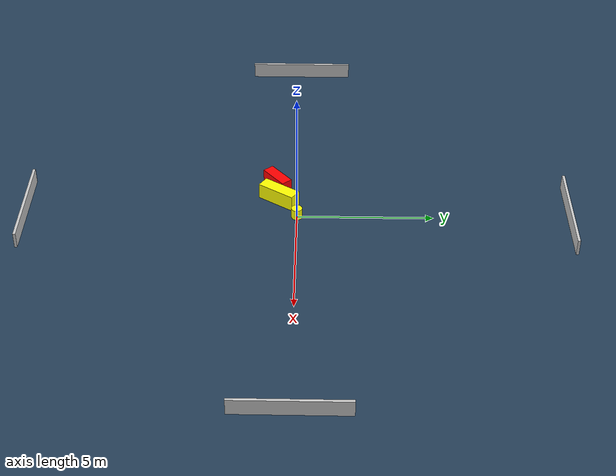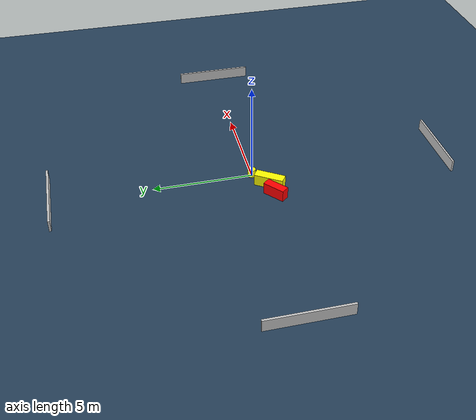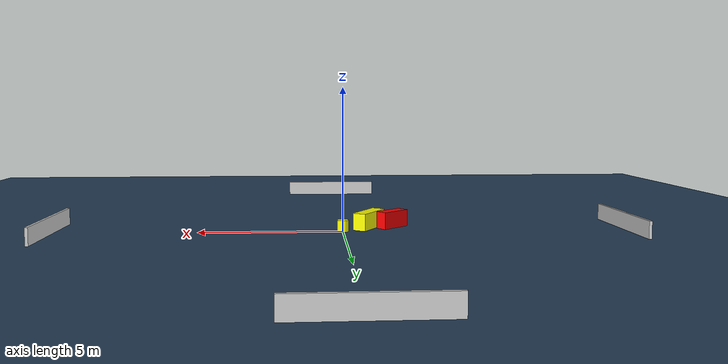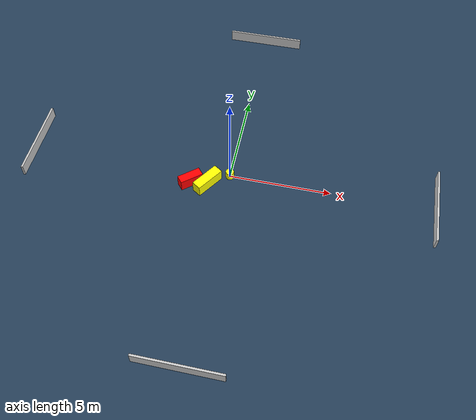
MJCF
<?xml version="1.0" ?>
<mujoco model="generated_environment">
  <option timestep="0.01" integrator="RK4" cone="elliptic"/>
  <default>
    <geom density="1"/>
  </default>
  <asset>
    <texture builtin="gradient" height="3072" name="skybox" rgb1="0.3 0.5 0.7" rgb2="0 0 0" type="skybox" width="512"/>
    <texture builtin="checker" height="300" name="groundplane" rgb1="0.2 0.3 0.4" rgb2="0.1 0.2 0.3" type="2d" width="300"/>
    <material name="groundplane" reflectance="0.2" texrepeat="5 5" texture="groundplane"/>
  </asset>
  <worldbody>
    <light dir="0 0 -1" directional="true" pos="0 0 1.5"/>
    <geom condim="3" friction="0.5 0.005 0.001" material="groundplane" name="floor" pos="0 0 0" size="0 0 0.05" type="plane"/>
    <body name="walls">
      <geom name="wall_1" condim="4" pos="-10.0 0.0 0.3" rgba="0.800000011920929 0.800000011920929 0.800000011920929 1.0" size="0.05 2.0 0.3" type="box"/>
      <geom name="wall_2" condim="4" pos="10.0 0.0 0.3" rgba="0.800000011920929 0.800000011920929 0.800000011920929 1.0" size="0.05 2.0 0.3" type="box"/>
      <geom name="wall_3" condim="4" pos="0.0 -10.0 0.3" rgba="0.800000011920929 0.800000011920929 0.800000011920929 1.0" size="2.0 0.05 0.3" type="box"/>
      <geom name="wall_4" condim="4" pos="0.0 10.0 0.3" rgba="0.800000011920929 0.800000011920929 0.800000011920929 1.0" size="2.0 0.05 0.3" type="box"/>
    </body>
    <body name="robot">
      <joint name="joint_x" type="slide" pos="0 0 0" axis="1 0 0"/>
      <joint name="joint_y" type="slide" pos="0 0 0" axis="0 1 0"/>
      <geom name="robot" type="cylinder" pos="0.0 0.0 0.2" size="0.2 0.2 0.0" mass="5.0" friction="1.0 0.005 0.0001" condim="4" rgba="1.0 1.0 0.0 1.0"/>
    </body>
    <body name="obstacle_1_movable">
      <geom name="obstacle_1_movable" condim="4" pos="-0.976806065813686 -0.6812907967273064 0.3" euler="0 0 146.47601810630061" friction="0.0 0.005 0.001" rgba="1.0 1.0 0.0 1.0" size="0.24004467723342365 0.7422517315812929 0.3" type="box" mass="0.1"/>
      <joint type="free"/>
    </body>
    <body name="obstacle_2_static">
      <geom name="obstacle_2_static" condim="4" pos="-1.8146006660417733 -0.763696901241139 0.3" euler="0 0 129.83034231143762" friction="0.0 0.005 0.001" rgba="1.0 0.0 0.0 1.0" size="0.21496405296769322 0.5737501774163516 0.3" type="box"/>
    </body>
  </worldbody>
  <actuator>
    <motor name="actuator_x" joint="joint_x" gear="1" ctrlrange="-1 1"/>
    <motor name="actuator_y" joint="joint_y" gear="1" ctrlrange="-1 1"/>
  </actuator>
</mujoco>
